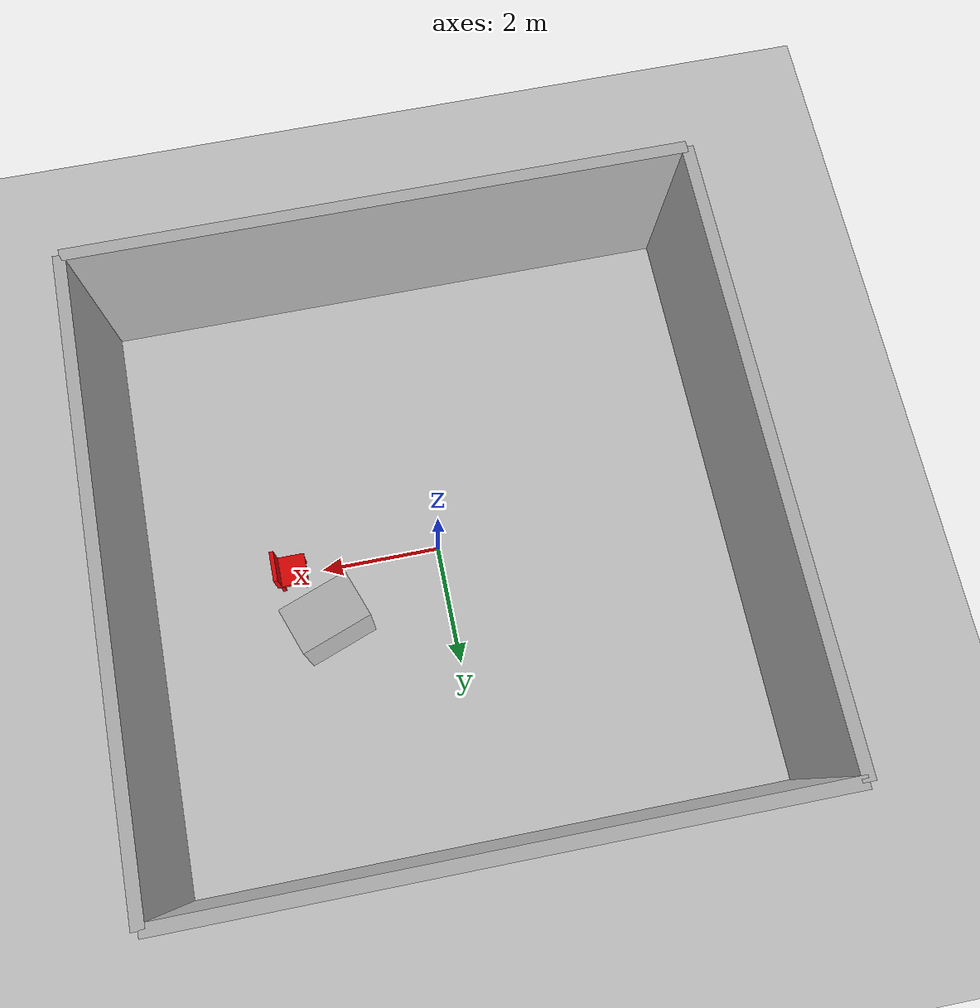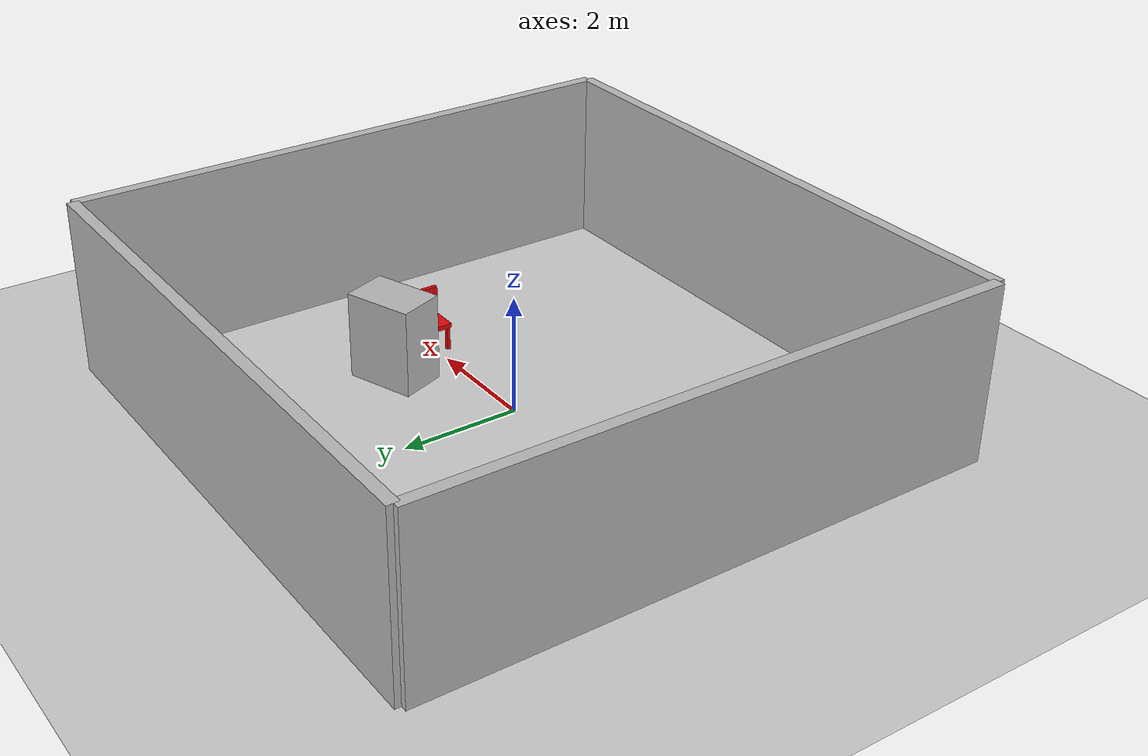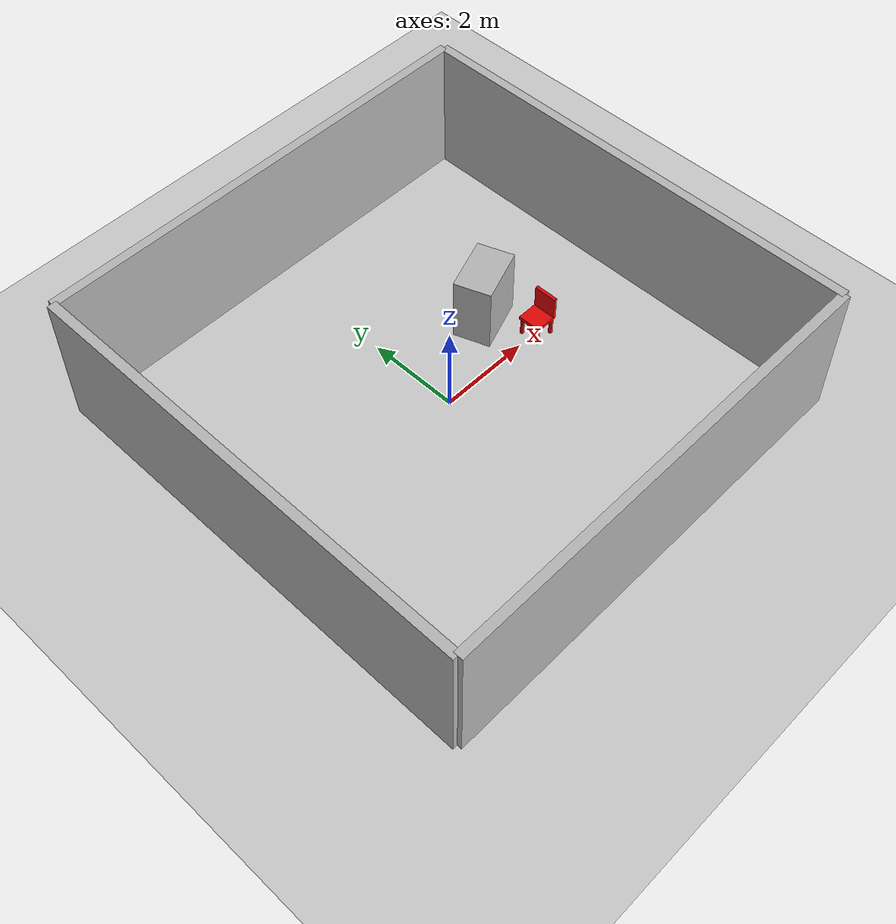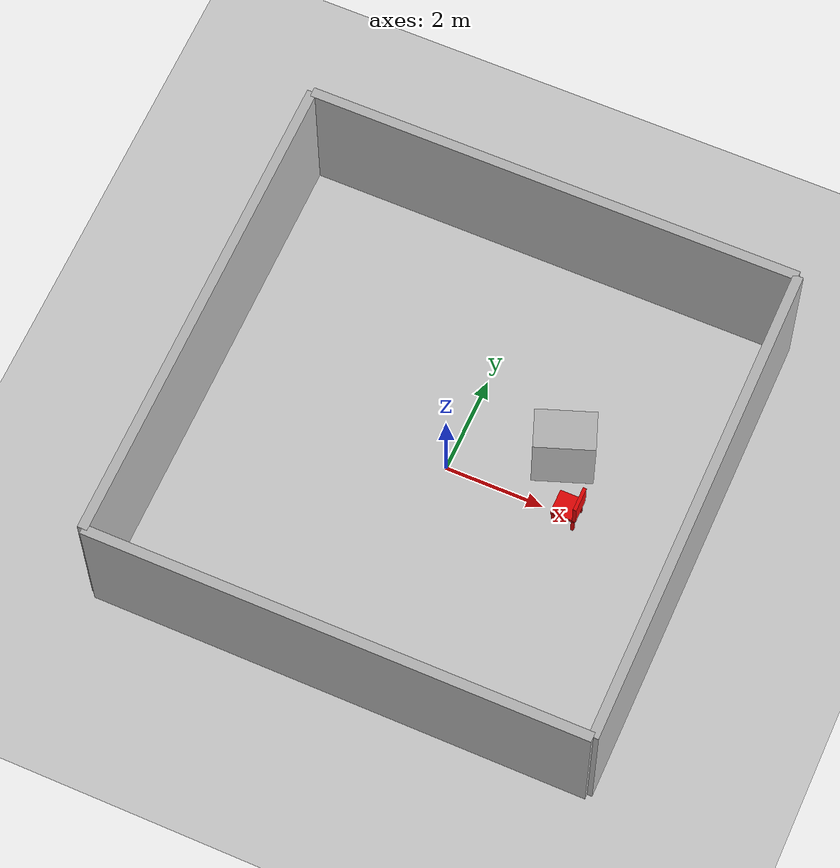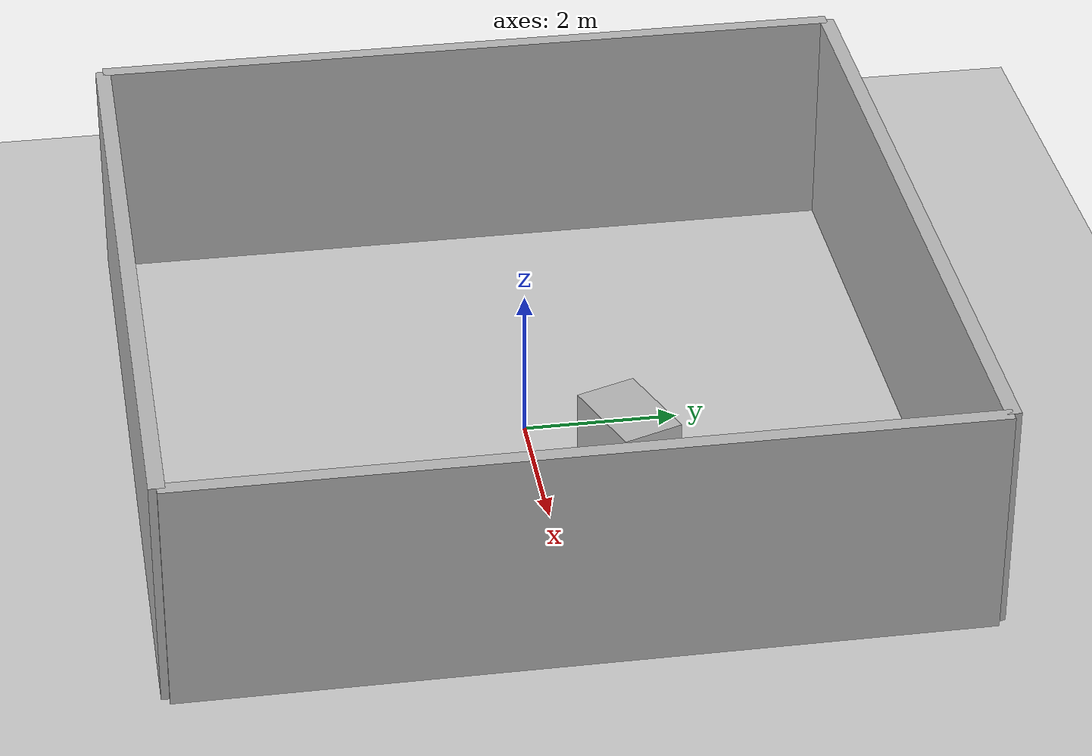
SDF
<?xml version="1.0"?>
  <sdf version="1.6">
    <world name="indoor_world">
      <include>
        <uri>model://sun</uri>
      </include>

      <include>
        <uri>model://ground_plane</uri>
      </include>

      <physics type="ode">
        <real_time_update_rate>1000</real_time_update_rate>
        <max_step_size>0.001</max_step_size>
      </physics>

      <!-- 北侧墙 -->
      <model name="wall_north">
        <static>true</static>
        <pose>0 5 1.5 0 0 0</pose>
        <link name="link">
          <collision name="collision">
            <geometry><box><size>10 0.2 3</size></box></geometry>
          </collision>
          <visual name="visual">
            <geometry><box><size>10 0.2 3</size></box></geometry>
          </visual>
        </link>
      </model>

      <!-- 南侧墙 -->
      <model name="wall_south">
        <static>true</static>
        <pose>0 -5 1.5 0 0 0</pose>
        <link name="link">
          <collision name="collision">
            <geometry><box><size>10 0.2 3</size></box></geometry>
          </collision>
          <visual name="visual">
            <geometry><box><size>10 0.2 3</size></box></geometry>
          </visual>
        </link>
      </model>

      <!-- 东侧墙 -->
      <model name="wall_east">
        <static>true</static>
        <pose>5 0 1.5 0 0 0</pose>
        <link name="link">
          <collision name="collision">
            <geometry><box><size>0.2 10 3</size></box></geometry>
          </collision>
          <visual name="visual">
            <geometry><box><size>0.2 10 3</size></box></geometry>
          </visual>
        </link>
      </model>

      <!-- 西侧墙 -->
      <model name="wall_west">
        <static>true</static>
        <pose>-5 0 1.5 0 0 0</pose>
        <link name="link">
          <collision name="collision">
            <geometry><box><size>0.2 10 3</size></box></geometry>
          </collision>
          <visual name="visual">
            <geometry><box><size>0.2 10 3</size></box></geometry>
          </visual>
        </link>
      </model>

      <!-- 用于产生非对称特征的障碍物 -->
      <model name="box_obstacle">
        <static>true</static>
        <pose>2 1 0.75 0 0 0.35</pose>
        <link name="link">
          <collision name="collision">
            <geometry><box><size>1.2 0.8 1.5</size></box></geometry>
          </collision>
          <visual name="visual">
            <geometry><box><size>1.2 0.8 1.5</size></box></geometry>
          </visual>
        </link>
      </model>
<model name="red_chair">
        <static>true</static>
        <pose>2.5 0 0 0 0 -1.57</pose>

        <link name="chair_link">
          <!-- 座板 -->
          <collision name="seat_collision">
            <pose>0 0 0.45 0 0 0</pose>
            <geometry>
              <box><size>0.5 0.5 0.08</size></box>
            </geometry>
          </collision>
          <visual name="seat_visual">
            <pose>0 0 0.45 0 0 0</pose>
            <geometry>
              <box><size>0.5 0.5 0.08</size></box>
            </geometry>
            <material>
              <ambient>0.8 0.02 0.02 1</ambient>
              <diffuse>0.9 0.02 0.02 1</diffuse>
            </material>
          </visual>

          <!-- 靠背 -->
          <collision name="back_collision">
            <pose>0 0.23 0.72 0 0 0</pose>
            <geometry>
              <box><size>0.5 0.07 0.55</size></box>
            </geometry>
          </collision>
          <visual name="back_visual">
            <pose>0 0.23 0.72 0 0 0</pose>
            <geometry>
              <box><size>0.5 0.07 0.55</size></box>
            </geometry>
            <material>
              <ambient>0.8 0.02 0.02 1</ambient>
              <diffuse>0.9 0.02 0.02 1</diffuse>
            </material>
          </visual>

          <!-- 四条椅腿 -->
          <collision name="leg_fl_collision">
            <pose>0.20 0.20 0.21 0 0 0</pose>
            <geometry><box><size>0.06 0.06 0.42</size></box></geometry>
          </collision>
          <visual name="leg_fl_visual">
            <pose>0.20 0.20 0.21 0 0 0</pose>
            <geometry><box><size>0.06 0.06 0.42</size></box></geometry>
            <material><ambient>0.8 0.02 0.02 1</ambient><diffuse>0.9 0.02 0.02 1</diffuse></material>
          </visual>

          <collision name="leg_fr_collision">
            <pose>-0.20 0.20 0.21 0 0 0</pose>
            <geometry><box><size>0.06 0.06 0.42</size></box></geometry>
          </collision>
          <visual name="leg_fr_visual">
            <pose>-0.20 0.20 0.21 0 0 0</pose>
            <geometry><box><size>0.06 0.06 0.42</size></box></geometry>
            <material><ambient>0.8 0.02 0.02 1</ambient><diffuse>0.9 0.02 0.02 1</diffuse></material>
          </visual>

          <collision name="leg_rl_collision">
            <pose>0.20 -0.20 0.21 0 0 0</pose>
            <geometry><box><size>0.06 0.06 0.42</size></box></geometry>
          </collision>
          <visual name="leg_rl_visual">
            <pose>0.20 -0.20 0.21 0 0 0</pose>
            <geometry><box><size>0.06 0.06 0.42</size></box></geometry>
            <material><ambient>0.8 0.02 0.02 1</ambient><diffuse>0.9 0.02 0.02 1</diffuse></material>
          </visual>

          <collision name="leg_rr_collision">
            <pose>-0.20 -0.20 0.21 0 0 0</pose>
            <geometry><box><size>0.06 0.06 0.42</size></box></geometry>
          </collision>
          <visual name="leg_rr_visual">
            <pose>-0.20 -0.20 0.21 0 0 0</pose>
            <geometry><box><size>0.06 0.06 0.42</size></box></geometry>
            <material><ambient>0.8 0.02 0.02 1</ambient><diffuse>0.9 0.02 0.02 1</diffuse></material>
          </visual>
        </link>
      </model>
    </world>
  </sdf>
